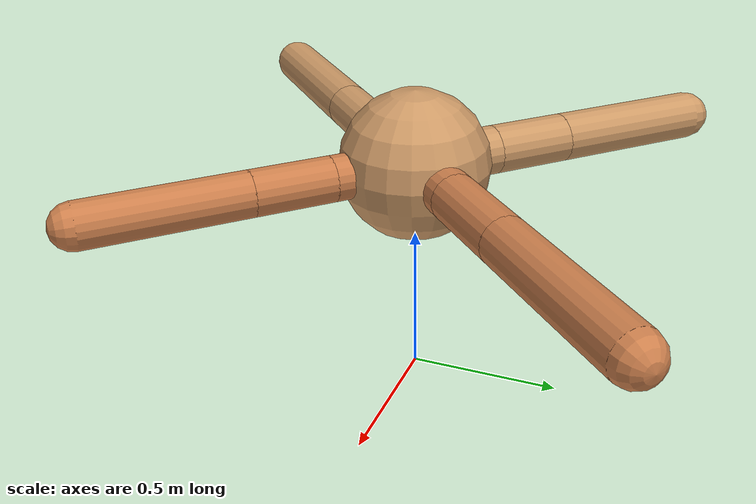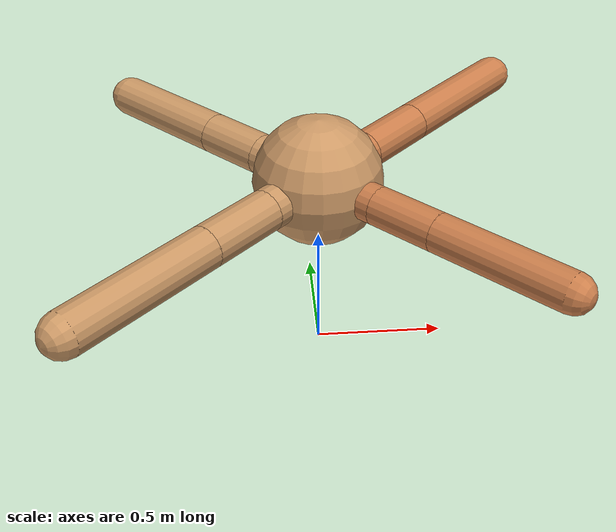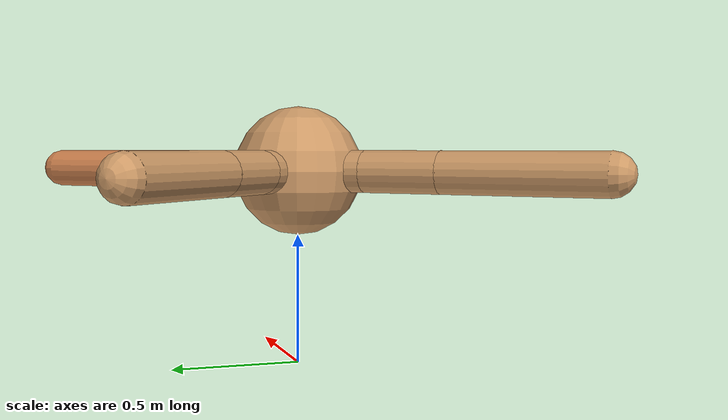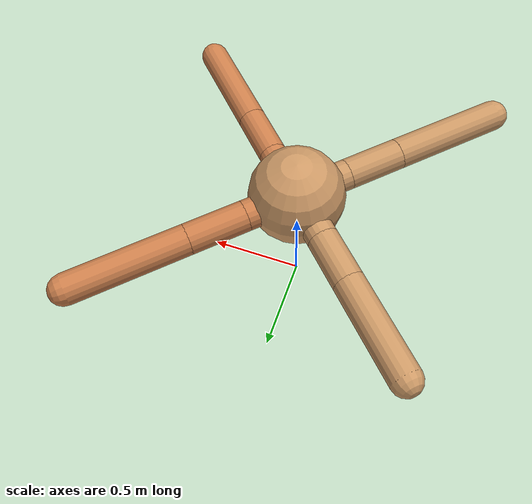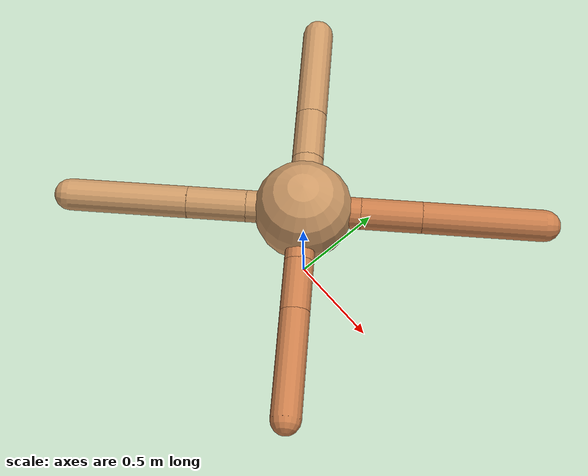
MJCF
<?xml version="1.0" ?>
<mujoco model="ant">

	<compiler angle="degree" coordinate="local" inertiafromgeom="true"/>

	<option integrator="RK4" timestep="0.01"/>

	<custom>

		<numeric data="0.0 0.0 0.55 1.0 0.0 0.0 0.0 0.0 1.0 0.0 -1.0 0.0 -1.0 0.0 1.0" name="init_qpos"/>

	</custom>

	<default>

		<joint armature="1" damping="1" limited="true"/>

		<geom conaffinity="0" condim="3" density="5.0" friction="1.5 0.1 0.1" margin="0.01" rgba="0.8 0.6 0.4 1"/>

	</default>

	<worldbody>

		<body name="torso" pos="0 0 0.75">

			<geom name="torso_geom" pos="0 0 0" size="0.2464781525752825" type="sphere"/>

			<!--joint armature="0" damping="0" limited="false" margin="0.01" name="root" pos="0 0 0" type="free"/-->

			<body name="front_left_leg" pos="0 0 0">

				<geom fromto="0 0 0 0.2 0.2 0" name="aux_1_geom" size="0.07861129655675506" type="capsule" rgba=".8 .5 .3 1"/>

				<body name="aux_1" pos="0.2 0.2 0">

					<joint axis="0 0 1" name="hip_1" pos="0.0 0.0 0.0" range="-40 40" type="hinge"/>

					<geom fromto="0 0 0 0.2134869354805852 0.2134869354805852 0" name="left_leg_geom" size="0.07861129655675506" type="capsule" rgba=".8 .5 .3 1"/>

					<body pos="0.2134869354805852 0.2134869354805852 0" name="front_left_foot">

						<joint axis="-1 1 0" name="ankle_1" pos="0.0 0.0 0.0" range="30 100" type="hinge"/>

						<geom fromto="0 0 0 0.4269738709611704 0.4269738709611704 0" name="left_ankle_geom" size="0.07861129655675506" type="capsule" rgba=".8 .5 .3 1"/>

					</body>

				</body>

			</body>

			<body name="front_right_leg" pos="0 0 0">

				<geom fromto="0 0 0 -0.2 0.2 0" name="aux_2_geom" size="0.08017663257559625" type="capsule"/>

				<body name="aux_2" pos="-0.2 0.2 0">

					<joint axis="0 0 1" name="hip_2" pos="0.0 0.0 0.0" range="-40 40" type="hinge"/>

					<geom fromto="0 0 0 -0.18241167435009373 0.18241167435009373 0" name="right_leg_geom" size="0.08017663257559625" type="capsule"/>

					<body pos="-0.18241167435009373 0.18241167435009373 0" name="front_right_foot">

						<joint axis="1 1 0" name="ankle_2" pos="0.0 0.0 0.0" range="-100 -30" type="hinge"/>

						<geom fromto="0 0 0 -0.36482334870018746 0.36482334870018746 0" name="right_ankle_geom" size="0.08017663257559625" type="capsule"/>

					</body>

				</body>

			</body>

			<body name="left_back_leg" pos="0 0 0">

				<geom fromto="0 0 0 -0.2 -0.2 0" name="aux_3_geom" size="0.07934580825133312" type="capsule"/>

				<body name="aux_3" pos="-0.2 -0.2 0">

					<joint axis="0 0 1" name="hip_3" pos="0.0 0.0 0.0" range="-40 40" type="hinge"/>

					<geom fromto="0 0 0 -0.20786548065571286 -0.20786548065571286 0" name="back_leg_geom" size="0.07934580825133312" type="capsule"/>

					<body pos="-0.20786548065571286 -0.20786548065571286 0" name="left_back_foot">

						<joint axis="-1 1 0" name="ankle_3" pos="0.0 0.0 0.0" range="-100 -30" type="hinge"/>

						<geom fromto="0 0 0 -0.41573096131142573 -0.41573096131142573 0" name="third_ankle_geom" size="0.07934580825133312" type="capsule"/>

					</body>

				</body>

			</body>

			<body name="right_back_leg" pos="0 0 0">

				<geom fromto="0 0 0 0.2 -0.2 0" name="aux_4_geom" size="0.0731327670841505" type="capsule" rgba=".8 .5 .3 1"/>

				<body name="aux_4" pos="0.2 -0.2 0">

					<joint axis="0 0 1" name="hip_4" pos="0.0 0.0 0.0" range="-40 40" type="hinge"/>

					<geom fromto="0 0 0 0.18210796575523516 -0.18210796575523516 0" name="rightback_leg_geom" size="0.0731327670841505" type="capsule" rgba=".8 .5 .3 1"/>

					<body pos="0.18210796575523516 -0.18210796575523516 0" name="right_back_foot">

						<joint axis="1 1 0" name="ankle_4" pos="0.0 0.0 0.0" range="30 100" type="hinge"/>

						<geom fromto="0 0 0 0.3642159315104703 -0.3642159315104703 0" name="fourth_ankle_geom" size="0.0731327670841505" type="capsule" rgba=".8 .5 .3 1"/>

					</body>

				</body>

			</body>

		</body>

	</worldbody>

	<actuator>

		<motor ctrllimited="true" ctrlrange="-1.0 1.0" joint="hip_4" gear="150"/>

		<motor ctrllimited="true" ctrlrange="-1.0 1.0" joint="ankle_4" gear="150"/>

		<motor ctrllimited="true" ctrlrange="-1.0 1.0" joint="hip_1" gear="150"/>

		<motor ctrllimited="true" ctrlrange="-1.0 1.0" joint="ankle_1" gear="150"/>

		<motor ctrllimited="true" ctrlrange="-1.0 1.0" joint="hip_2" gear="150"/>

		<motor ctrllimited="true" ctrlrange="-1.0 1.0" joint="ankle_2" gear="150"/>

		<motor ctrllimited="true" ctrlrange="-1.0 1.0" joint="hip_3" gear="150"/>

		<motor ctrllimited="true" ctrlrange="-1.0 1.0" joint="ankle_3" gear="150"/>

	</actuator>

</mujoco>
